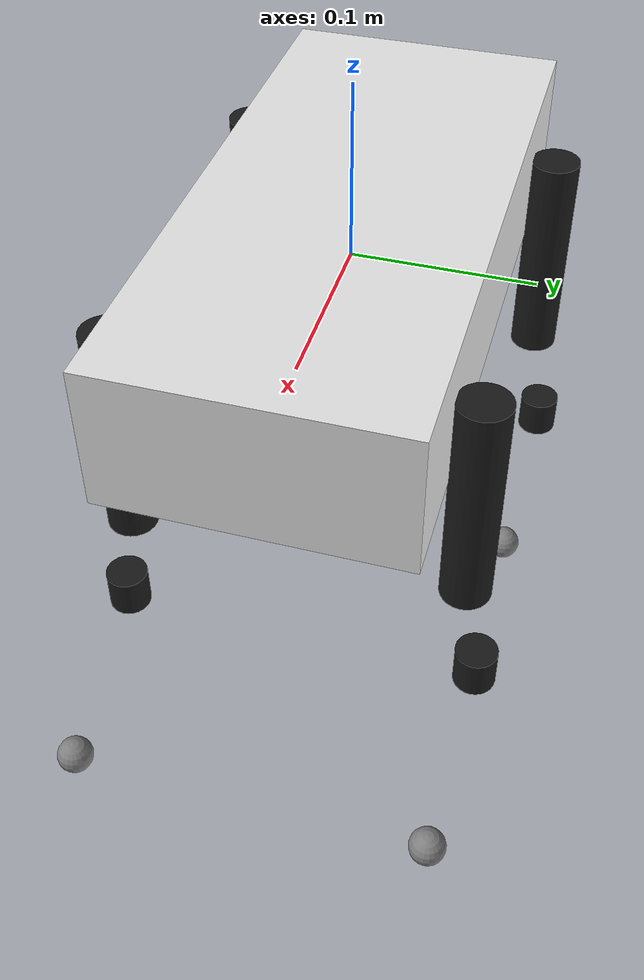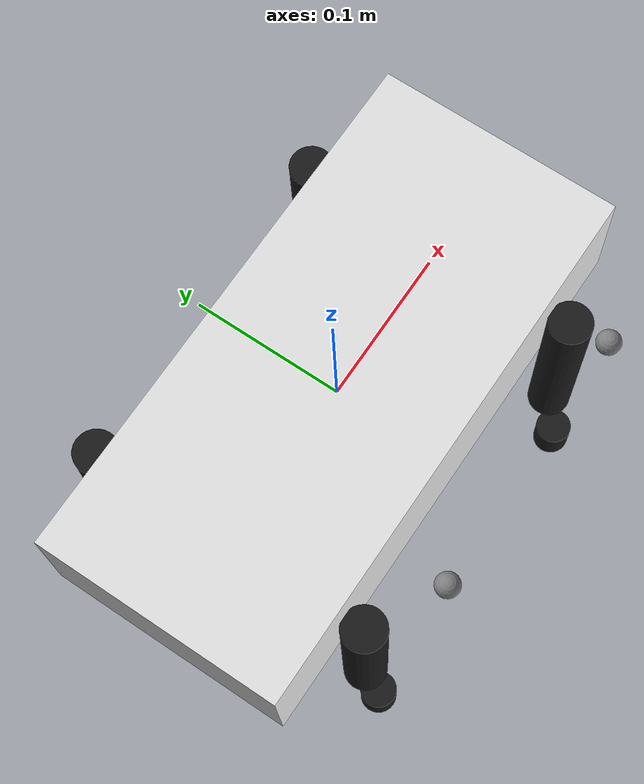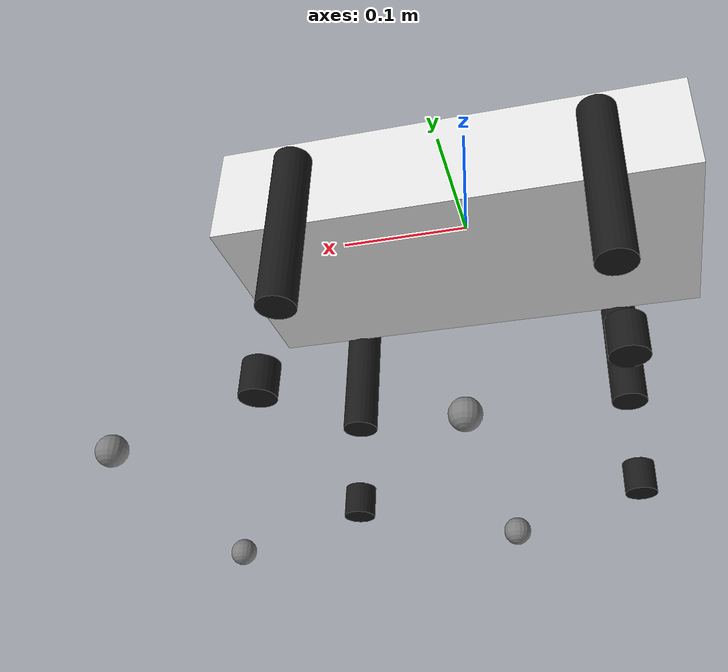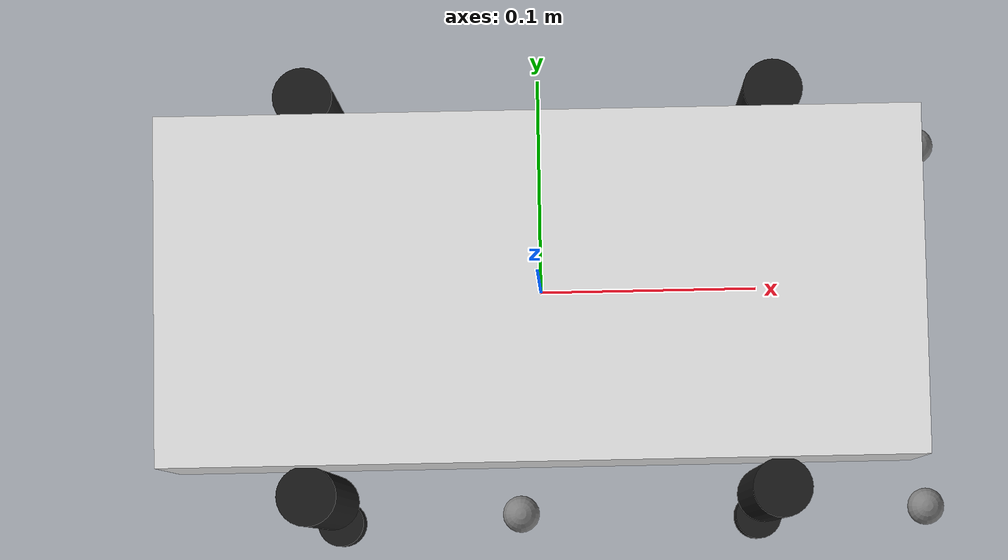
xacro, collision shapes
<?xml version="1.0"?>
<robot name="jax" xmlns:xacro="http://www.ros.org/wiki/xacro">

  <!-- Launch-provided args -->
  <xacro:arg name="controllers_yaml" default=""/>
  <xacro:arg name="jax_share" default=""/>

  <!-- Absolute mesh root -->
  <xacro:property name="mesh_root" value="$(arg jax_share)/meshes"/>

  <!-- =========================
       Basic parameters
       ========================= -->
  <xacro:property name="body_length" value="0.35"/>
  <xacro:property name="body_width"  value="0.16"/>
  <xacro:property name="body_height" value="0.08"/>

  <xacro:property name="hip_drop"  value="0.0001"/>
  <xacro:property name="thigh_len" value="0.13"/>
  <xacro:property name="calf_len"  value="0.12"/>

  <xacro:property name="hip_radius"   value="0.018"/>
  <xacro:property name="thigh_radius" value="0.014"/>
  <xacro:property name="calf_radius"  value="0.012"/>
  <xacro:property name="foot_radius"  value="0.010"/>

  <xacro:property name="hip_x" value="${body_length/2 - 0.065}"/>
  <xacro:property name="hip_y" value="${body_width/2  - 0.02}"/>
  <xacro:property name="hip_z" value="0.01"/>
  <xacro:property name="hip_x_shift" value="-0.02"/>  <!-- negative = move both front+rear backward -->

  <!-- Mesh correction rotations (rpy) -->
  <xacro:property name="hip_mesh_rpy"   value="0 0 0"/>
  <xacro:property name="thigh_mesh_rpy" value="0 0 0"/>
  <xacro:property name="calf_mesh_rpy"  value="0 0 0"/>
  <xacro:property name="foot_mesh_rpy"  value="0 0 0"/>

  <xacro:property name="hip_to_thigh_drop" value="0.04"/>

  <!-- Tuned hip mesh offsets (magnitudes) -->
  <xacro:property name="hip_mesh_y_mag" value="0.033"/>
  <xacro:property name="hip_mesh_z_offset" value="0.0"/>

  <xacro:property name="thigh_joint_y_mag" value="0.033"/>   <!-- outward -->
  <xacro:property name="thigh_joint_z_offset" value="0.0"/>

  <xacro:property name="calf_joint_y_mag" value="0.01"/>  <!-- tune this -->
  <xacro:property name="foot_joint_y_mag" value="-0.004"/>

  <!-- =========================
       Materials (RViz)
       ========================= -->
  <material name="black"><color rgba="0.1 0.1 0.1 1"/></material>
  <material name="white"><color rgba="0.9 0.9 0.9 1"/></material>
  <material name="gray"><color rgba="0.5 0.5 0.5 1"/></material>

  <!-- =========================
       Simple inertial macros
       ========================= -->
  <xacro:macro name="inertial_box" params="mass x y z">
    <inertial>
      <mass value="${mass}"/>
      <origin xyz="0 0 0" rpy="0 0 0"/>
      <inertia
        ixx="${(mass/12.0) * (y*y + z*z)}"
        iyy="${(mass/12.0) * (x*x + z*z)}"
        izz="${(mass/12.0) * (x*x + y*y)}"
        ixy="0" ixz="0" iyz="0"/>
    </inertial>
  </xacro:macro>

  <xacro:macro name="inertial_cylinder" params="mass radius length axis">
    <inertial>
      <mass value="${mass}"/>
      <origin xyz="0 0 0" rpy="0 0 0"/>
      <xacro:if value="${axis == 'z'}">
        <inertia
          ixx="${(mass/12.0) * (3*radius*radius + length*length)}"
          iyy="${(mass/12.0) * (3*radius*radius + length*length)}"
          izz="${0.5*mass*radius*radius}"
          ixy="0" ixz="0" iyz="0"/>
      </xacro:if>
      <xacro:if value="${axis != 'z'}">
        <inertia
          ixx="${0.5*mass*radius*radius}"
          iyy="${(mass/12.0) * (3*radius*radius + length*length)}"
          izz="${(mass/12.0) * (3*radius*radius + length*length)}"
          ixy="0" ixz="0" iyz="0"/>
      </xacro:if>
    </inertial>
  </xacro:macro>

  <!-- =========================
       Base link
       ========================= -->
  <link name="base_link">
    <visual name="base_visual">
      <origin xyz="0.005 0 0" rpy="0 0 0"/>
      <geometry>
        <mesh filename="file://${mesh_root}/base_link.stl"
              scale="0.001 0.001 0.001"/>
      </geometry>
      <material name="white"/>
    </visual>

    <collision name="base_collision">
      <origin xyz="0 0 0" rpy="0 0 0"/>
      <geometry>
        <box size="${body_length} ${body_width} ${body_height}"/>
      </geometry>
    </collision>

    <inertial>
      <mass value="2.0"/>
      <origin xyz="0.03 0 0" rpy="0 0 0"/>
      <inertia
        ixx="${(2.0/12.0) * (body_width*body_width + body_height*body_height)}"
        iyy="${(2.0/12.0) * (body_length*body_length + body_height*body_height)}"
        izz="${(2.0/12.0) * (body_length*body_length + body_width*body_width)}"
        ixy="0" ixz="0" iyz="0"/>
    </inertial>
  </link>

  <gazebo reference="base_link">
    <material>Gazebo/White</material>
  </gazebo>

  <gazebo reference="base_link">
    <material>Gazebo/White</material>
    <gravity>false</gravity>
  </gazebo>

  <!-- IMU frame -->
  <link name="imu_link"/>
  <joint name="imu_joint" type="fixed">
    <parent link="base_link"/>
    <child link="imu_link"/>
    <origin xyz="0 0 0.02" rpy="0 0 0"/>
  </joint>

  <!-- =========================
       Leg macro with left/right mesh selection
       ========================= -->
  <xacro:macro name="leg" params="prefix x y z">

    <!-- Compute hip mesh Y offset inside macro (prefix is defined here) -->
    <xacro:property name="hip_mesh_y_offset" value="${hip_mesh_y_mag}"/>
    <xacro:if value="${'right' in prefix}">
      <xacro:property name="hip_mesh_y_offset" value="${-hip_mesh_y_mag}"/>
    </xacro:if>

    <xacro:property name="thigh_joint_y" value="${thigh_joint_y_mag}"/>
    <xacro:if value="${'right' in prefix}">
      <xacro:property name="thigh_joint_y" value="${-thigh_joint_y_mag}"/>
    </xacro:if>

    <xacro:property name="calf_joint_y" value="${calf_joint_y_mag}"/>
    <xacro:if value="${'right' in prefix}">
      <xacro:property name="calf_joint_y" value="${-calf_joint_y_mag}"/>
    </xacro:if>

    <xacro:property name="foot_joint_y" value="${foot_joint_y_mag}"/>
    <xacro:if value="${'right' in prefix}">
      <xacro:property name="foot_joint_y" value="${-foot_joint_y_mag}"/>
    </xacro:if>

    <!-- Choose left/right meshes based on prefix -->
    <xacro:property name="hip_mesh"   value="${'left' in prefix and 'left_hip.stl'   or 'right_hip.stl'}"/>
    <xacro:property name="thigh_mesh" value="${'left' in prefix and 'left_thigh.stl' or 'right_thigh.stl'}"/>
    <xacro:property name="calf_mesh"  value="${'left' in prefix and 'left_calf.stl'  or 'right_calf.stl'}"/>
    <xacro:property name="foot_mesh" value="foot.stl"/>

    <!-- Hip link -->
    <link name="${prefix}_hip_link">
      <visual name="${prefix}_hip_visual">
        <origin xyz="0 ${hip_mesh_y_offset} ${hip_mesh_z_offset}" rpy="0 0 0"/>
        <geometry>
          <mesh filename="file://${mesh_root}/${hip_mesh}"
                scale="0.001 0.001 0.001"/>
        </geometry>
        <material name="gray"/>
      </visual>

      <collision name="${prefix}_hip_collision">
        <origin xyz="0 0 0" rpy="0 0 0"/>
        <geometry>
          <cylinder radius="${hip_radius}" length="${hip_drop}"/>
        </geometry>
      </collision>

      <xacro:inertial_cylinder mass="0.10" radius="${hip_radius}" length="${hip_drop}" axis="z"/>
    </link>

    <gazebo reference="${prefix}_hip_link">
      <material>Gazebo/Grey</material>
    </gazebo>

    <joint name="${prefix}_hip_joint" type="revolute">
      <parent link="base_link"/>
      <child link="${prefix}_hip_link"/>
      <origin xyz="${x} ${y} ${z}" rpy="0 0 0"/>
      <axis xyz="1 0 0"/>
      <limit lower="-0.60" upper="0.60" effort="30.0" velocity="6.0"/>
      <dynamics damping="2.0" friction="0.2"/>
    </joint>

    <!-- Thigh link -->
    <link name="${prefix}_thigh_link">
      <visual name="${prefix}_thigh_visual">
        <origin xyz="0 0 0" rpy="${thigh_mesh_rpy}"/>
        <geometry>
          <mesh filename="file://${mesh_root}/${thigh_mesh}"
                scale="0.001 0.001 0.001"/>
        </geometry>
        <material name="black"/>
      </visual>

      <collision name="${prefix}_thigh_collision">
        <origin xyz="0 0 ${-thigh_len/2}" rpy="0 0 0"/>
        <geometry>
          <cylinder radius="${thigh_radius}" length="${thigh_len}"/>
        </geometry>
      </collision>

      <xacro:inertial_cylinder mass="0.18" radius="${thigh_radius}" length="${thigh_len}" axis="x"/>
    </link>

    <gazebo reference="${prefix}_thigh_link">
      <material>Gazebo/Black</material>
    </gazebo>

    <joint name="${prefix}_thigh_joint" type="revolute">
      <parent link="${prefix}_hip_link"/>
      <child link="${prefix}_thigh_link"/>
      <origin xyz="0 ${thigh_joint_y} ${thigh_joint_z_offset}" rpy="0 0 0"/>
      <axis xyz="0 1 0"/>
      <limit lower="-1.20" upper="1.20" effort="40.0" velocity="6.0"/>
      <dynamics damping="2.0" friction="0.1"/>
    </joint>

    <!-- Calf link -->
    <link name="${prefix}_calf_link">
      <visual name="${prefix}_calf_visual">
        <origin xyz="0 0 0" rpy="${calf_mesh_rpy}"/>
        <geometry>
          <mesh filename="file://${mesh_root}/${calf_mesh}"
                scale="0.001 0.001 0.001"/>
        </geometry>
        <material name="black"/>
      </visual>

      <!-- stable calf collision -->
      <collision name="${prefix}_calf_collision">
        <origin xyz="0 0 ${-calf_len/2}" rpy="0 0 0"/>
        <geometry>
          <cylinder radius="${calf_radius}" length="${calf_len * 0.2}"/>
        </geometry>
      </collision>

      <xacro:inertial_cylinder mass="0.14" radius="${calf_radius}" length="${calf_len}" axis="x"/>
    </link>

    <gazebo reference="${prefix}_calf_link">
      <material>Gazebo/Black</material>
    </gazebo>

    <joint name="${prefix}_calf_joint" type="revolute">
      <parent link="${prefix}_thigh_link"/>
      <child link="${prefix}_calf_link"/>
      <origin xyz="0 ${calf_joint_y} ${-thigh_len}" rpy="0 0 0"/>
      <axis xyz="0 1 0"/>
      <limit lower="-1.40" upper="0.0" effort="30.0" velocity="6.0"/>
      <dynamics damping="2.0" friction="0.1"/>
    </joint>

    <!-- Foot link -->
    <link name="${prefix}_foot_link">
      <visual name="${prefix}_foot_visual">
        <origin xyz="0 0 -0.005" rpy="0 0 0"/>
        <geometry>
          <mesh filename="file://${mesh_root}/${foot_mesh}"
                scale="0.001 0.001 0.001"/>
        </geometry>
        <material name="gray"/>
      </visual>

      <collision name="${prefix}_foot_collision">
        <origin xyz="0 0 0" rpy="0 0 0"/>
        <geometry>
          <sphere radius="${foot_radius}"/>
        </geometry>
      </collision>

      <inertial>
        <mass value="0.03"/>
        <origin xyz="0 0 0" rpy="0 0 0"/>
        <inertia ixx="1e-5" iyy="1e-5" izz="1e-5" ixy="0" ixz="0" iyz="0"/>
      </inertial>
    </link>

   <gazebo reference="${prefix}_foot_link">
      <material>Gazebo/Grey</material>

      <!-- friction -->
      <mu1>1.5</mu1>
      <mu2>1.5</mu2>

      <!-- contact stiffness/damping (helps prevent “ice skating” and bouncing) -->
      <kp>100000.0</kp>
      <kd>1.0</kd>
    </gazebo>

    <joint name="${prefix}_foot_joint" type="fixed">
      <parent link="${prefix}_calf_link"/>
      <child link="${prefix}_foot_link"/>
      <!-- your tuned foot location -->
      <origin xyz="0.094 ${foot_joint_y} ${-calf_len + 0.025}" rpy="0 0 0"/>
    </joint>

  </xacro:macro>

  <!-- =========================
       Instantiate legs
       ========================= -->
  <xacro:leg prefix="front_left"  x="${ hip_x}" y="${ hip_y}" z="${hip_z}"/>
  <xacro:leg prefix="front_right" x="${ hip_x}" y="${-hip_y}" z="${hip_z}"/>
  <xacro:leg prefix="rear_left"   x="${-hip_x}" y="${ hip_y}" z="${hip_z}"/>
  <xacro:leg prefix="rear_right"  x="${-hip_x}" y="${-hip_y}" z="${hip_z}"/>

  <!-- =========================
       ros2_control for Gazebo
       ========================= -->
  <ros2_control name="JaxSystem" type="system">
    <hardware>
      <plugin>gz_ros2_control/GazeboSimSystem</plugin>
    </hardware>

    <joint name="front_left_hip_joint">
      <command_interface name="position"/>
      <state_interface name="position"/>
      <state_interface name="velocity"/>
    </joint>
    <joint name="front_left_thigh_joint">
      <command_interface name="position"/>
      <state_interface name="position"/>
      <state_interface name="velocity"/>
    </joint>
    <joint name="front_left_calf_joint">
      <command_interface name="position"/>
      <state_interface name="position"/>
      <state_interface name="velocity"/>
    </joint>

    <joint name="front_right_hip_joint">
      <command_interface name="position"/>
      <state_interface name="position"/>
      <state_interface name="velocity"/>
    </joint>
    <joint name="front_right_thigh_joint">
      <command_interface name="position"/>
      <state_interface name="position"/>
      <state_interface name="velocity"/>
    </joint>
    <joint name="front_right_calf_joint">
      <command_interface name="position"/>
      <state_interface name="position"/>
      <state_interface name="velocity"/>
    </joint>

    <joint name="rear_left_hip_joint">
      <command_interface name="position"/>
      <state_interface name="position"/>
      <state_interface name="velocity"/>
    </joint>
    <joint name="rear_left_thigh_joint">
      <command_interface name="position"/>
      <state_interface name="position"/>
      <state_interface name="velocity"/>
    </joint>
    <joint name="rear_left_calf_joint">
      <command_interface name="position"/>
      <state_interface name="position"/>
      <state_interface name="velocity"/>
    </joint>

    <joint name="rear_right_hip_joint">
      <command_interface name="position"/>
      <state_interface name="position"/>
      <state_interface name="velocity"/>
    </joint>
    <joint name="rear_right_thigh_joint">
      <command_interface name="position"/>
      <state_interface name="position"/>
      <state_interface name="velocity"/>
    </joint>
    <joint name="rear_right_calf_joint">
      <command_interface name="position"/>
      <state_interface name="position"/>
      <state_interface name="velocity"/>
    </joint>
  </ros2_control>

  <gazebo>
    <plugin filename="gz_ros2_control-system" name="gz_ros2_control::GazeboSimROS2ControlPlugin">
      <robot_param>robot_description</robot_param>
      <robot_param_node>robot_state_publisher</robot_param_node>
      <parameters>$(arg controllers_yaml)</parameters>
    </plugin>
  </gazebo>

    <!-- =========================
       Gazebo initial joint positions (spawn stable)
       ========================= -->

  <!-- Front Left -->
  <gazebo reference="front_left_hip_joint"><initial_position>0.0</initial_position></gazebo>
  <gazebo reference="front_left_thigh_joint"><initial_position>0.6</initial_position></gazebo>
  <gazebo reference="front_left_calf_joint"><initial_position>-1.2</initial_position></gazebo>

  <!-- Front Right -->
  <gazebo reference="front_right_hip_joint"><initial_position>0.0</initial_position></gazebo>
  <gazebo reference="front_right_thigh_joint"><initial_position>0.6</initial_position></gazebo>
  <gazebo reference="front_right_calf_joint"><initial_position>-1.2</initial_position></gazebo>

  <!-- Rear Left -->
  <gazebo reference="rear_left_hip_joint"><initial_position>0.0</initial_position></gazebo>
  <gazebo reference="rear_left_thigh_joint"><initial_position>0.6</initial_position></gazebo>
  <gazebo reference="rear_left_calf_joint"><initial_position>-1.2</initial_position></gazebo>

  <!-- Rear Right -->
  <gazebo reference="rear_right_hip_joint"><initial_position>0.0</initial_position></gazebo>
  <gazebo reference="rear_right_thigh_joint"><initial_position>0.6</initial_position></gazebo>
  <gazebo reference="rear_right_calf_joint"><initial_position>-1.2</initial_position></gazebo>

</robot>
